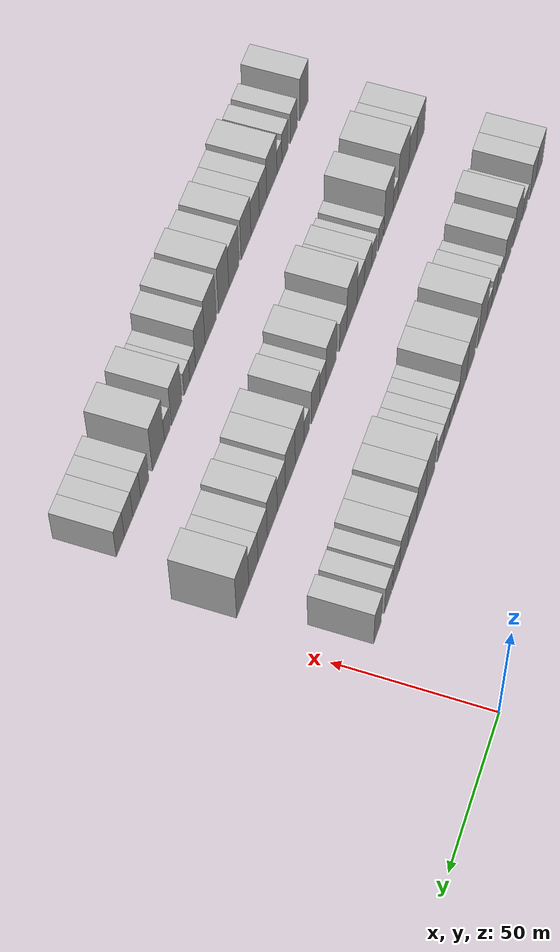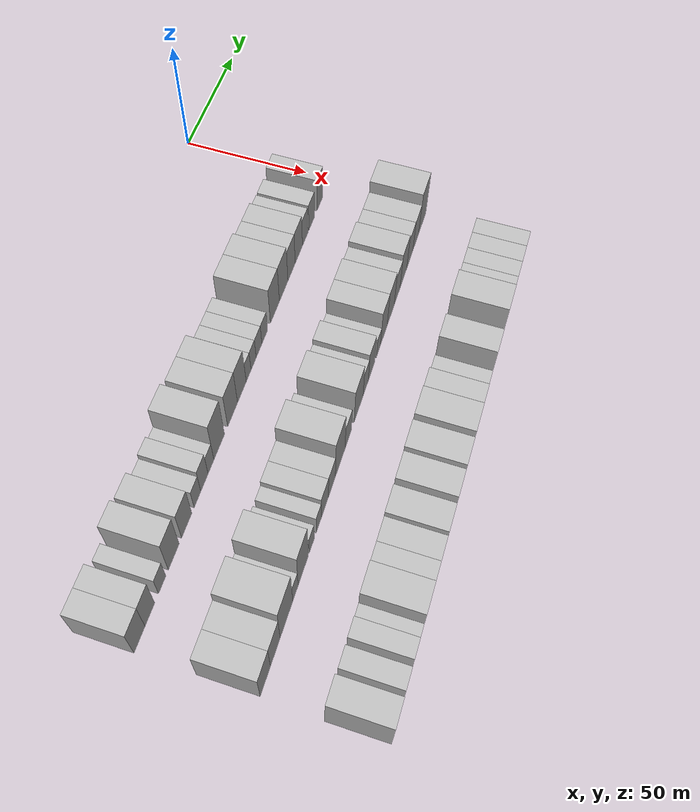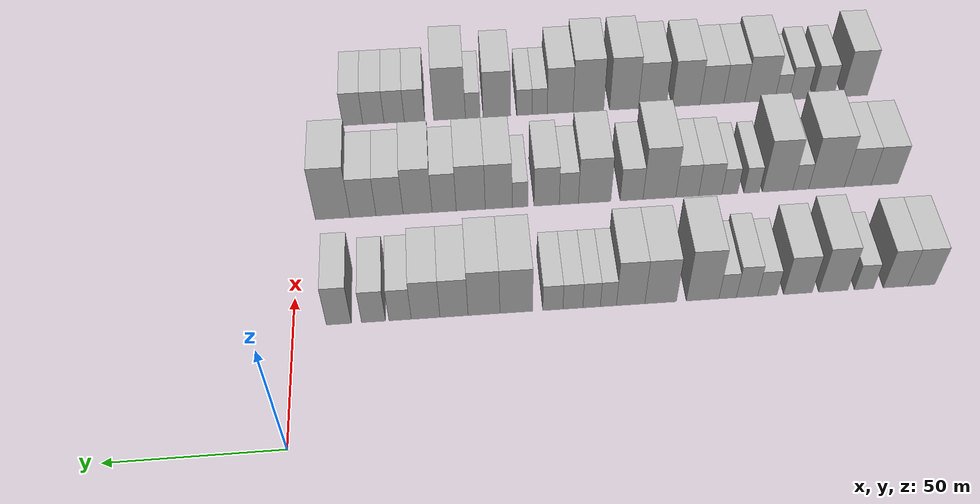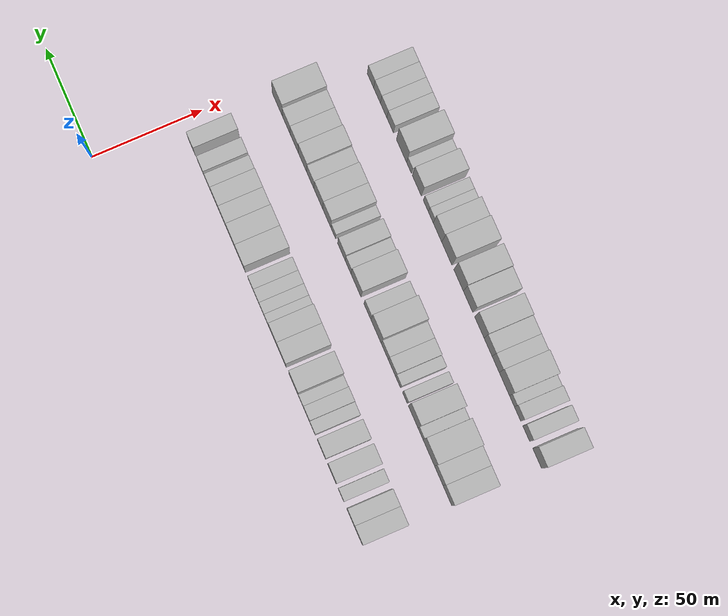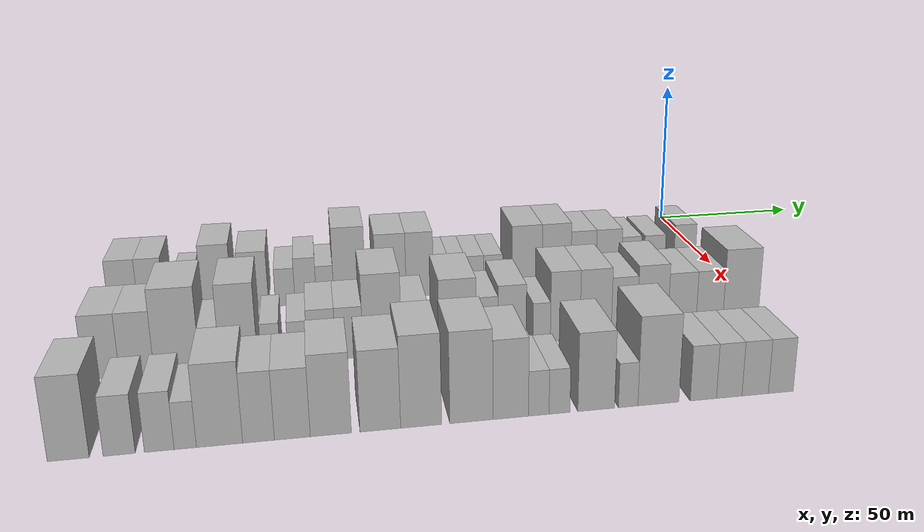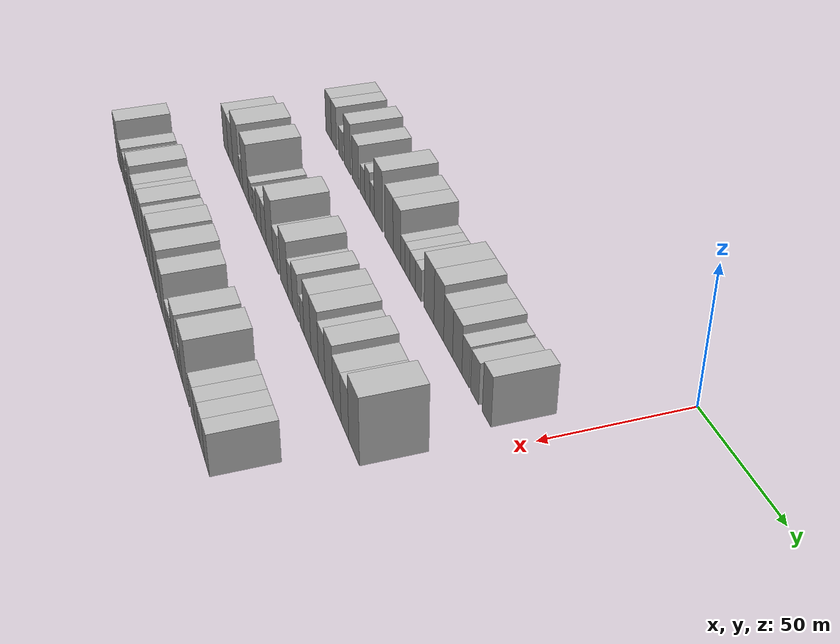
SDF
<sdf version="1.6">
 <world name="default">
  <model name="building_24">
   <static>1</static>
   <pose>50.0000 -187.6576 0 0.000000 0.000000 0.000000</pose>
   <link name="link">
    <pose>0 0 9.00 0 0 0</pose>
    <collision name="collision"><geometry><box><size>20.0000 8.3534 18.0000</size></box></geometry></collision>
    <visual name="visual">
     <cast_shadows>0</cast_shadows>
     <geometry><box><size>20.0000 8.3534 18.0000</size></box></geometry>
     <material>
      <script>
       <uri>model://HANNAS_wall/materials/scripts</uri>
       <uri>model://HANNAS_wall/materials/textures</uri>
       <name>vrc/HANNAS_wall</name>
      </script>
     </material>
    </visual>
   </link>
  </model>
  <model name="building_25">
   <static>1</static>
   <pose>50.0000 -179.7481 0 0.000000 0.000000 0.000000</pose>
   <link name="link">
    <pose>0 0 9.00 0 0 0</pose>
    <collision name="collision"><geometry><box><size>20.0000 7.4656 18.0000</size></box></geometry></collision>
    <visual name="visual">
     <cast_shadows>0</cast_shadows>
     <geometry><box><size>20.0000 7.4656 18.0000</size></box></geometry>
     <material>
      <script>
       <uri>model://HANNAS_wall/materials/scripts</uri>
       <uri>model://HANNAS_wall/materials/textures</uri>
       <name>vrc/HANNAS_wall</name>
      </script>
     </material>
    </visual>
   </link>
  </model>
  <model name="building_26">
   <static>1</static>
   <pose>50.0000 -170.0977 0 0.000000 0.000000 0.000000</pose>
   <link name="link">
    <pose>0 0 6.00 0 0 0</pose>
    <collision name="collision"><geometry><box><size>20.0000 5.8352 12.0000</size></box></geometry></collision>
    <visual name="visual">
     <cast_shadows>0</cast_shadows>
     <geometry><box><size>20.0000 5.8352 12.0000</size></box></geometry>
     <material>
      <script>
       <uri>model://HANNAS_wall/materials/scripts</uri>
       <uri>model://HANNAS_wall/materials/textures</uri>
       <name>vrc/HANNAS_wall</name>
      </script>
     </material>
    </visual>
   </link>
  </model>
  <model name="building_27">
   <static>1</static>
   <pose>50.0000 -160.7447 0 0.000000 0.000000 0.000000</pose>
   <link name="link">
    <pose>0 0 10.50 0 0 0</pose>
    <collision name="collision"><geometry><box><size>20.0000 8.8708 21.0000</size></box></geometry></collision>
    <visual name="visual">
     <cast_shadows>0</cast_shadows>
     <geometry><box><size>20.0000 8.8708 21.0000</size></box></geometry>
     <material>
      <script>
       <uri>model://HANNAS_wall/materials/scripts</uri>
       <uri>model://HANNAS_wall/materials/textures</uri>
       <name>vrc/HANNAS_wall</name>
      </script>
     </material>
    </visual>
   </link>
  </model>
  <model name="building_28">
   <static>1</static>
   <pose>50.0000 -149.9543 0 0.000000 0.000000 0.000000</pose>
   <link name="link">
    <pose>0 0 9.00 0 0 0</pose>
    <collision name="collision"><geometry><box><size>20.0000 8.7100 18.0000</size></box></geometry></collision>
    <visual name="visual">
     <cast_shadows>0</cast_shadows>
     <geometry><box><size>20.0000 8.7100 18.0000</size></box></geometry>
     <material>
      <script>
       <uri>model://HANNAS_wall/materials/scripts</uri>
       <uri>model://HANNAS_wall/materials/textures</uri>
       <name>vrc/HANNAS_wall</name>
      </script>
     </material>
    </visual>
   </link>
  </model>
  <model name="building_29">
   <static>1</static>
   <pose>50.0000 -140.6729 0 0.000000 0.000000 0.000000</pose>
   <link name="link">
    <pose>0 0 6.00 0 0 0</pose>
    <collision name="collision"><geometry><box><size>20.0000 5.8529 12.0000</size></box></geometry></collision>
    <visual name="visual">
     <cast_shadows>0</cast_shadows>
     <geometry><box><size>20.0000 5.8529 12.0000</size></box></geometry>
     <material>
      <script>
       <uri>model://HANNAS_wall/materials/scripts</uri>
       <uri>model://HANNAS_wall/materials/textures</uri>
       <name>vrc/HANNAS_wall</name>
      </script>
     </material>
    </visual>
   </link>
  </model>
  <model name="building_30">
   <static>1</static>
   <pose>50.0000 -134.5189 0 0.000000 0.000000 0.000000</pose>
   <link name="link">
    <pose>0 0 7.50 0 0 0</pose>
    <collision name="collision"><geometry><box><size>20.0000 6.4551 15.0000</size></box></geometry></collision>
    <visual name="visual">
     <cast_shadows>0</cast_shadows>
     <geometry><box><size>20.0000 6.4551 15.0000</size></box></geometry>
     <material>
      <script>
       <uri>model://HANNAS_wall/materials/scripts</uri>
       <uri>model://HANNAS_wall/materials/textures</uri>
       <name>vrc/HANNAS_wall</name>
      </script>
     </material>
    </visual>
   </link>
  </model>
  <model name="building_31">
   <static>1</static>
   <pose>50.0000 -128.6459 0 0.000000 0.000000 0.000000</pose>
   <link name="link">
    <pose>0 0 6.00 0 0 0</pose>
    <collision name="collision"><geometry><box><size>20.0000 5.2908 12.0000</size></box></geometry></collision>
    <visual name="visual">
     <cast_shadows>0</cast_shadows>
     <geometry><box><size>20.0000 5.2908 12.0000</size></box></geometry>
     <material>
      <script>
       <uri>model://HANNAS_wall/materials/scripts</uri>
       <uri>model://HANNAS_wall/materials/textures</uri>
       <name>vrc/HANNAS_wall</name>
      </script>
     </material>
    </visual>
   </link>
  </model>
  <model name="building_32">
   <static>1</static>
   <pose>50.0000 -121.1085 0 0.000000 0.000000 0.000000</pose>
   <link name="link">
    <pose>0 0 12.00 0 0 0</pose>
    <collision name="collision"><geometry><box><size>20.0000 9.7842 24.0000</size></box></geometry></collision>
    <visual name="visual">
     <cast_shadows>0</cast_shadows>
     <geometry><box><size>20.0000 9.7842 24.0000</size></box></geometry>
     <material>
      <script>
       <uri>model://HANNAS_wall/materials/scripts</uri>
       <uri>model://HANNAS_wall/materials/textures</uri>
       <name>vrc/HANNAS_wall</name>
      </script>
     </material>
    </visual>
   </link>
  </model>
  <model name="building_33">
   <static>1</static>
   <pose>50.0000 -108.4735 0 0.000000 0.000000 0.000000</pose>
   <link name="link">
    <pose>0 0 10.50 0 0 0</pose>
    <collision name="collision"><geometry><box><size>20.0000 9.4856 21.0000</size></box></geometry></collision>
    <visual name="visual">
     <cast_shadows>0</cast_shadows>
     <geometry><box><size>20.0000 9.4856 21.0000</size></box></geometry>
     <material>
      <script>
       <uri>model://HANNAS_wall/materials/scripts</uri>
       <uri>model://HANNAS_wall/materials/textures</uri>
       <name>vrc/HANNAS_wall</name>
      </script>
     </material>
    </visual>
   </link>
  </model>
  <model name="building_34">
   <static>1</static>
   <pose>50.0000 -99.4671 0 0.000000 0.000000 0.000000</pose>
   <link name="link">
    <pose>0 0 10.50 0 0 0</pose>
    <collision name="collision"><geometry><box><size>20.0000 8.5273 21.0000</size></box></geometry></collision>
    <visual name="visual">
     <cast_shadows>0</cast_shadows>
     <geometry><box><size>20.0000 8.5273 21.0000</size></box></geometry>
     <material>
      <script>
       <uri>model://HANNAS_wall/materials/scripts</uri>
       <uri>model://HANNAS_wall/materials/textures</uri>
       <name>vrc/HANNAS_wall</name>
      </script>
     </material>
    </visual>
   </link>
  </model>
  <model name="building_35">
   <static>1</static>
   <pose>50.0000 -92.8020 0 0.000000 0.000000 0.000000</pose>
   <link name="link">
    <pose>0 0 6.00 0 0 0</pose>
    <collision name="collision"><geometry><box><size>20.0000 4.8028 12.0000</size></box></geometry></collision>
    <visual name="visual">
     <cast_shadows>0</cast_shadows>
     <geometry><box><size>20.0000 4.8028 12.0000</size></box></geometry>
     <material>
      <script>
       <uri>model://HANNAS_wall/materials/scripts</uri>
       <uri>model://HANNAS_wall/materials/textures</uri>
       <name>vrc/HANNAS_wall</name>
      </script>
     </material>
    </visual>
   </link>
  </model>
  <model name="building_36">
   <static>1</static>
   <pose>50.0000 -87.7829 0 0.000000 0.000000 0.000000</pose>
   <link name="link">
    <pose>0 0 6.00 0 0 0</pose>
    <collision name="collision"><geometry><box><size>20.0000 5.2355 12.0000</size></box></geometry></collision>
    <visual name="visual">
     <cast_shadows>0</cast_shadows>
     <geometry><box><size>20.0000 5.2355 12.0000</size></box></geometry>
     <material>
      <script>
       <uri>model://HANNAS_wall/materials/scripts</uri>
       <uri>model://HANNAS_wall/materials/textures</uri>
       <name>vrc/HANNAS_wall</name>
      </script>
     </material>
    </visual>
   </link>
  </model>
  <model name="building_37">
   <static>1</static>
   <pose>50.0000 -82.2030 0 0.000000 0.000000 0.000000</pose>
   <link name="link">
    <pose>0 0 6.00 0 0 0</pose>
    <collision name="collision"><geometry><box><size>20.0000 5.9243 12.0000</size></box></geometry></collision>
    <visual name="visual">
     <cast_shadows>0</cast_shadows>
     <geometry><box><size>20.0000 5.9243 12.0000</size></box></geometry>
     <material>
      <script>
       <uri>model://HANNAS_wall/materials/scripts</uri>
       <uri>model://HANNAS_wall/materials/textures</uri>
       <name>vrc/HANNAS_wall</name>
      </script>
     </material>
    </visual>
   </link>
  </model>
  <model name="building_38">
   <static>1</static>
   <pose>50.0000 -76.2471 0 0.000000 0.000000 0.000000</pose>
   <link name="link">
    <pose>0 0 6.00 0 0 0</pose>
    <collision name="collision"><geometry><box><size>20.0000 5.9875 12.0000</size></box></geometry></collision>
    <visual name="visual">
     <cast_shadows>0</cast_shadows>
     <geometry><box><size>20.0000 5.9875 12.0000</size></box></geometry>
     <material>
      <script>
       <uri>model://HANNAS_wall/materials/scripts</uri>
       <uri>model://HANNAS_wall/materials/textures</uri>
       <name>vrc/HANNAS_wall</name>
      </script>
     </material>
    </visual>
   </link>
  </model>
  <model name="building_39">
   <static>1</static>
   <pose>50.0000 -65.3838 0 0.000000 0.000000 0.000000</pose>
   <link name="link">
    <pose>0 0 10.50 0 0 0</pose>
    <collision name="collision"><geometry><box><size>20.0000 9.7389 21.0000</size></box></geometry></collision>
    <visual name="visual">
     <cast_shadows>0</cast_shadows>
     <geometry><box><size>20.0000 9.7389 21.0000</size></box></geometry>
     <material>
      <script>
       <uri>model://HANNAS_wall/materials/scripts</uri>
       <uri>model://HANNAS_wall/materials/textures</uri>
       <name>vrc/HANNAS_wall</name>
      </script>
     </material>
    </visual>
   </link>
  </model>
  <model name="building_40">
   <static>1</static>
   <pose>50.0000 -55.8111 0 0.000000 0.000000 0.000000</pose>
   <link name="link">
    <pose>0 0 10.50 0 0 0</pose>
    <collision name="collision"><geometry><box><size>20.0000 9.4066 21.0000</size></box></geometry></collision>
    <visual name="visual">
     <cast_shadows>0</cast_shadows>
     <geometry><box><size>20.0000 9.4066 21.0000</size></box></geometry>
     <material>
      <script>
       <uri>model://HANNAS_wall/materials/scripts</uri>
       <uri>model://HANNAS_wall/materials/textures</uri>
       <name>vrc/HANNAS_wall</name>
      </script>
     </material>
    </visual>
   </link>
  </model>
  <model name="building_41">
   <static>1</static>
   <pose>50.0000 -46.9540 0 0.000000 0.000000 0.000000</pose>
   <link name="link">
    <pose>0 0 9.00 0 0 0</pose>
    <collision name="collision"><geometry><box><size>20.0000 8.3075 18.0000</size></box></geometry></collision>
    <visual name="visual">
     <cast_shadows>0</cast_shadows>
     <geometry><box><size>20.0000 8.3075 18.0000</size></box></geometry>
     <material>
      <script>
       <uri>model://HANNAS_wall/materials/scripts</uri>
       <uri>model://HANNAS_wall/materials/textures</uri>
       <name>vrc/HANNAS_wall</name>
      </script>
     </material>
    </visual>
   </link>
  </model>
  <model name="building_42">
   <static>1</static>
   <pose>50.0000 -38.5774 0 0.000000 0.000000 0.000000</pose>
   <link name="link">
    <pose>0 0 9.00 0 0 0</pose>
    <collision name="collision"><geometry><box><size>20.0000 8.4458 18.0000</size></box></geometry></collision>
    <visual name="visual">
     <cast_shadows>0</cast_shadows>
     <geometry><box><size>20.0000 8.4458 18.0000</size></box></geometry>
     <material>
      <script>
       <uri>model://HANNAS_wall/materials/scripts</uri>
       <uri>model://HANNAS_wall/materials/textures</uri>
       <name>vrc/HANNAS_wall</name>
      </script>
     </material>
    </visual>
   </link>
  </model>
  <model name="building_43">
   <static>1</static>
   <pose>50.0000 -31.0797 0 0.000000 0.000000 0.000000</pose>
   <link name="link">
    <pose>0 0 7.50 0 0 0</pose>
    <collision name="collision"><geometry><box><size>20.0000 6.5497 15.0000</size></box></geometry></collision>
    <visual name="visual">
     <cast_shadows>0</cast_shadows>
     <geometry><box><size>20.0000 6.5497 15.0000</size></box></geometry>
     <material>
      <script>
       <uri>model://HANNAS_wall/materials/scripts</uri>
       <uri>model://HANNAS_wall/materials/textures</uri>
       <name>vrc/HANNAS_wall</name>
      </script>
     </material>
    </visual>
   </link>
  </model>
  <model name="building_44">
   <static>1</static>
   <pose>50.0000 -23.2890 0 0.000000 0.000000 0.000000</pose>
   <link name="link">
    <pose>0 0 7.50 0 0 0</pose>
    <collision name="collision"><geometry><box><size>20.0000 7.0316 15.0000</size></box></geometry></collision>
    <visual name="visual">
     <cast_shadows>0</cast_shadows>
     <geometry><box><size>20.0000 7.0316 15.0000</size></box></geometry>
     <material>
      <script>
       <uri>model://HANNAS_wall/materials/scripts</uri>
       <uri>model://HANNAS_wall/materials/textures</uri>
       <name>vrc/HANNAS_wall</name>
      </script>
     </material>
    </visual>
   </link>
  </model>
  <model name="building_45">
   <static>1</static>
   <pose>50.0000 -13.1310 0 0.000000 0.000000 0.000000</pose>
   <link name="link">
    <pose>0 0 9.00 0 0 0</pose>
    <collision name="collision"><geometry><box><size>20.0000 7.2844 18.0000</size></box></geometry></collision>
    <visual name="visual">
     <cast_shadows>0</cast_shadows>
     <geometry><box><size>20.0000 7.2844 18.0000</size></box></geometry>
     <material>
      <script>
       <uri>model://HANNAS_wall/materials/scripts</uri>
       <uri>model://HANNAS_wall/materials/textures</uri>
       <name>vrc/HANNAS_wall</name>
      </script>
     </material>
    </visual>
   </link>
  </model>
  <model name="building_110">
   <static>1</static>
   <pose>90.0000 -187.4447 0 0.000000 0.000000 0.000000</pose>
   <link name="link">
    <pose>0 0 9.00 0 0 0</pose>
    <collision name="collision"><geometry><box><size>20.0000 8.9232 18.0000</size></box></geometry></collision>
    <visual name="visual">
     <cast_shadows>0</cast_shadows>
     <geometry><box><size>20.0000 8.9232 18.0000</size></box></geometry>
     <material>
      <script>
       <uri>model://HANNAS_wall/materials/scripts</uri>
       <uri>model://HANNAS_wall/materials/textures</uri>
       <name>vrc/HANNAS_wall</name>
      </script>
     </material>
    </visual>
   </link>
  </model>
  <model name="building_111">
   <static>1</static>
   <pose>90.0000 -178.6407 0 0.000000 0.000000 0.000000</pose>
   <link name="link">
    <pose>0 0 9.00 0 0 0</pose>
    <collision name="collision"><geometry><box><size>20.0000 8.6849 18.0000</size></box></geometry></collision>
    <visual name="visual">
     <cast_shadows>0</cast_shadows>
     <geometry><box><size>20.0000 8.6849 18.0000</size></box></geometry>
     <material>
      <script>
       <uri>model://HANNAS_wall/materials/scripts</uri>
       <uri>model://HANNAS_wall/materials/textures</uri>
       <name>vrc/HANNAS_wall</name>
      </script>
     </material>
    </visual>
   </link>
  </model>
  <model name="building_112">
   <static>1</static>
   <pose>90.0000 -168.4499 0 0.000000 0.000000 0.000000</pose>
   <link name="link">
    <pose>0 0 12.00 0 0 0</pose>
    <collision name="collision"><geometry><box><size>20.0000 11.6965 24.0000</size></box></geometry></collision>
    <visual name="visual">
     <cast_shadows>0</cast_shadows>
     <geometry><box><size>20.0000 11.6965 24.0000</size></box></geometry>
     <material>
      <script>
       <uri>model://HANNAS_wall/materials/scripts</uri>
       <uri>model://HANNAS_wall/materials/textures</uri>
       <name>vrc/HANNAS_wall</name>
      </script>
     </material>
    </visual>
   </link>
  </model>
  <model name="building_113">
   <static>1</static>
   <pose>90.0000 -160.0272 0 0.000000 0.000000 0.000000</pose>
   <link name="link">
    <pose>0 0 6.00 0 0 0</pose>
    <collision name="collision"><geometry><box><size>20.0000 5.1489 12.0000</size></box></geometry></collision>
    <visual name="visual">
     <cast_shadows>0</cast_shadows>
     <geometry><box><size>20.0000 5.1489 12.0000</size></box></geometry>
     <material>
      <script>
       <uri>model://HANNAS_wall/materials/scripts</uri>
       <uri>model://HANNAS_wall/materials/textures</uri>
       <name>vrc/HANNAS_wall</name>
      </script>
     </material>
    </visual>
   </link>
  </model>
  <model name="building_114">
   <static>1</static>
   <pose>90.0000 -152.5129 0 0.000000 0.000000 0.000000</pose>
   <link name="link">
    <pose>0 0 12.00 0 0 0</pose>
    <collision name="collision"><geometry><box><size>20.0000 9.8797 24.0000</size></box></geometry></collision>
    <visual name="visual">
     <cast_shadows>0</cast_shadows>
     <geometry><box><size>20.0000 9.8797 24.0000</size></box></geometry>
     <material>
      <script>
       <uri>model://HANNAS_wall/materials/scripts</uri>
       <uri>model://HANNAS_wall/materials/textures</uri>
       <name>vrc/HANNAS_wall</name>
      </script>
     </material>
    </visual>
   </link>
  </model>
  <model name="building_115">
   <static>1</static>
   <pose>90.0000 -144.0586 0 0.000000 0.000000 0.000000</pose>
   <link name="link">
    <pose>0 0 6.00 0 0 0</pose>
    <collision name="collision"><geometry><box><size>20.0000 5.0291 12.0000</size></box></geometry></collision>
    <visual name="visual">
     <cast_shadows>0</cast_shadows>
     <geometry><box><size>20.0000 5.0291 12.0000</size></box></geometry>
     <material>
      <script>
       <uri>model://HANNAS_wall/materials/scripts</uri>
       <uri>model://HANNAS_wall/materials/textures</uri>
       <name>vrc/HANNAS_wall</name>
      </script>
     </material>
    </visual>
   </link>
  </model>
  <model name="building_116">
   <static>1</static>
   <pose>90.0000 -136.9716 0 0.000000 0.000000 0.000000</pose>
   <link name="link">
    <pose>0 0 6.00 0 0 0</pose>
    <collision name="collision"><geometry><box><size>20.0000 5.1449 12.0000</size></box></geometry></collision>
    <visual name="visual">
     <cast_shadows>0</cast_shadows>
     <geometry><box><size>20.0000 5.1449 12.0000</size></box></geometry>
     <material>
      <script>
       <uri>model://HANNAS_wall/materials/scripts</uri>
       <uri>model://HANNAS_wall/materials/textures</uri>
       <name>vrc/HANNAS_wall</name>
      </script>
     </material>
    </visual>
   </link>
  </model>
  <model name="building_117">
   <static>1</static>
   <pose>90.0000 -130.6499 0 0.000000 0.000000 0.000000</pose>
   <link name="link">
    <pose>0 0 7.50 0 0 0</pose>
    <collision name="collision"><geometry><box><size>20.0000 7.4985 15.0000</size></box></geometry></collision>
    <visual name="visual">
     <cast_shadows>0</cast_shadows>
     <geometry><box><size>20.0000 7.4985 15.0000</size></box></geometry>
     <material>
      <script>
       <uri>model://HANNAS_wall/materials/scripts</uri>
       <uri>model://HANNAS_wall/materials/textures</uri>
       <name>vrc/HANNAS_wall</name>
      </script>
     </material>
    </visual>
   </link>
  </model>
  <model name="building_118">
   <static>1</static>
   <pose>90.0000 -123.2020 0 0.000000 0.000000 0.000000</pose>
   <link name="link">
    <pose>0 0 7.50 0 0 0</pose>
    <collision name="collision"><geometry><box><size>20.0000 7.3974 15.0000</size></box></geometry></collision>
    <visual name="visual">
     <cast_shadows>0</cast_shadows>
     <geometry><box><size>20.0000 7.3974 15.0000</size></box></geometry>
     <material>
      <script>
       <uri>model://HANNAS_wall/materials/scripts</uri>
       <uri>model://HANNAS_wall/materials/textures</uri>
       <name>vrc/HANNAS_wall</name>
      </script>
     </material>
    </visual>
   </link>
  </model>
  <model name="building_119">
   <static>1</static>
   <pose>90.0000 -114.2329 0 0.000000 0.000000 0.000000</pose>
   <link name="link">
    <pose>0 0 12.00 0 0 0</pose>
    <collision name="collision"><geometry><box><size>20.0000 10.5407 24.0000</size></box></geometry></collision>
    <visual name="visual">
     <cast_shadows>0</cast_shadows>
     <geometry><box><size>20.0000 10.5407 24.0000</size></box></geometry>
     <material>
      <script>
       <uri>model://HANNAS_wall/materials/scripts</uri>
       <uri>model://HANNAS_wall/materials/textures</uri>
       <name>vrc/HANNAS_wall</name>
      </script>
     </material>
    </visual>
   </link>
  </model>
  <model name="building_120">
   <static>1</static>
   <pose>90.0000 -105.2889 0 0.000000 0.000000 0.000000</pose>
   <link name="link">
    <pose>0 0 7.50 0 0 0</pose>
    <collision name="collision"><geometry><box><size>20.0000 7.3475 15.0000</size></box></geometry></collision>
    <visual name="visual">
     <cast_shadows>0</cast_shadows>
     <geometry><box><size>20.0000 7.3475 15.0000</size></box></geometry>
     <material>
      <script>
       <uri>model://HANNAS_wall/materials/scripts</uri>
       <uri>model://HANNAS_wall/materials/textures</uri>
       <name>vrc/HANNAS_wall</name>
      </script>
     </material>
    </visual>
   </link>
  </model>
  <model name="building_121">
   <static>1</static>
   <pose>90.0000 -93.4156 0 0.000000 0.000000 0.000000</pose>
   <link name="link">
    <pose>0 0 10.50 0 0 0</pose>
    <collision name="collision"><geometry><box><size>20.0000 10.3990 21.0000</size></box></geometry></collision>
    <visual name="visual">
     <cast_shadows>0</cast_shadows>
     <geometry><box><size>20.0000 10.3990 21.0000</size></box></geometry>
     <material>
      <script>
       <uri>model://HANNAS_wall/materials/scripts</uri>
       <uri>model://HANNAS_wall/materials/textures</uri>
       <name>vrc/HANNAS_wall</name>
      </script>
     </material>
    </visual>
   </link>
  </model>
  <model name="building_122">
   <static>1</static>
   <pose>90.0000 -85.1647 0 0.000000 0.000000 0.000000</pose>
   <link name="link">
    <pose>0 0 7.50 0 0 0</pose>
    <collision name="collision"><geometry><box><size>20.0000 6.1029 15.0000</size></box></geometry></collision>
    <visual name="visual">
     <cast_shadows>0</cast_shadows>
     <geometry><box><size>20.0000 6.1029 15.0000</size></box></geometry>
     <material>
      <script>
       <uri>model://HANNAS_wall/materials/scripts</uri>
       <uri>model://HANNAS_wall/materials/textures</uri>
       <name>vrc/HANNAS_wall</name>
      </script>
     </material>
    </visual>
   </link>
  </model>
  <model name="building_123">
   <static>1</static>
   <pose>90.0000 -78.1053 0 0.000000 0.000000 0.000000</pose>
   <link name="link">
    <pose>0 0 9.00 0 0 0</pose>
    <collision name="collision"><geometry><box><size>20.0000 8.0158 18.0000</size></box></geometry></collision>
    <visual name="visual">
     <cast_shadows>0</cast_shadows>
     <geometry><box><size>20.0000 8.0158 18.0000</size></box></geometry>
     <material>
      <script>
       <uri>model://HANNAS_wall/materials/scripts</uri>
       <uri>model://HANNAS_wall/materials/textures</uri>
       <name>vrc/HANNAS_wall</name>
      </script>
     </material>
    </visual>
   </link>
  </model>
  <model name="building_124">
   <static>1</static>
   <pose>90.0000 -69.6190 0 0.000000 0.000000 0.000000</pose>
   <link name="link">
    <pose>0 0 6.00 0 0 0</pose>
    <collision name="collision"><geometry><box><size>20.0000 4.9568 12.0000</size></box></geometry></collision>
    <visual name="visual">
     <cast_shadows>0</cast_shadows>
     <geometry><box><size>20.0000 4.9568 12.0000</size></box></geometry>
     <material>
      <script>
       <uri>model://HANNAS_wall/materials/scripts</uri>
       <uri>model://HANNAS_wall/materials/textures</uri>
       <name>vrc/HANNAS_wall</name>
      </script>
     </material>
    </visual>
   </link>
  </model>
  <model name="building_125">
   <static>1</static>
   <pose>90.0000 -62.8625 0 0.000000 0.000000 0.000000</pose>
   <link name="link">
    <pose>0 0 10.50 0 0 0</pose>
    <collision name="collision"><geometry><box><size>20.0000 8.5563 21.0000</size></box></geometry></collision>
    <visual name="visual">
     <cast_shadows>0</cast_shadows>
     <geometry><box><size>20.0000 8.5563 21.0000</size></box></geometry>
     <material>
      <script>
       <uri>model://HANNAS_wall/materials/scripts</uri>
       <uri>model://HANNAS_wall/materials/textures</uri>
       <name>vrc/HANNAS_wall</name>
      </script>
     </material>
    </visual>
   </link>
  </model>
  <model name="building_126">
   <static>1</static>
   <pose>90.0000 -53.9871 0 0.000000 0.000000 0.000000</pose>
   <link name="link">
    <pose>0 0 10.50 0 0 0</pose>
    <collision name="collision"><geometry><box><size>20.0000 9.1945 21.0000</size></box></geometry></collision>
    <visual name="visual">
     <cast_shadows>0</cast_shadows>
     <geometry><box><size>20.0000 9.1945 21.0000</size></box></geometry>
     <material>
      <script>
       <uri>model://HANNAS_wall/materials/scripts</uri>
       <uri>model://HANNAS_wall/materials/textures</uri>
       <name>vrc/HANNAS_wall</name>
      </script>
     </material>
    </visual>
   </link>
  </model>
  <model name="building_127">
   <static>1</static>
   <pose>90.0000 -45.5771 0 0.000000 0.000000 0.000000</pose>
   <link name="link">
    <pose>0 0 9.00 0 0 0</pose>
    <collision name="collision"><geometry><box><size>20.0000 7.6255 18.0000</size></box></geometry></collision>
    <visual name="visual">
     <cast_shadows>0</cast_shadows>
     <geometry><box><size>20.0000 7.6255 18.0000</size></box></geometry>
     <material>
      <script>
       <uri>model://HANNAS_wall/materials/scripts</uri>
       <uri>model://HANNAS_wall/materials/textures</uri>
       <name>vrc/HANNAS_wall</name>
      </script>
     </material>
    </visual>
   </link>
  </model>
  <model name="building_128">
   <static>1</static>
   <pose>90.0000 -37.1855 0 0.000000 0.000000 0.000000</pose>
   <link name="link">
    <pose>0 0 10.50 0 0 0</pose>
    <collision name="collision"><geometry><box><size>20.0000 9.1577 21.0000</size></box></geometry></collision>
    <visual name="visual">
     <cast_shadows>0</cast_shadows>
     <geometry><box><size>20.0000 9.1577 21.0000</size></box></geometry>
     <material>
      <script>
       <uri>model://HANNAS_wall/materials/scripts</uri>
       <uri>model://HANNAS_wall/materials/textures</uri>
       <name>vrc/HANNAS_wall</name>
      </script>
     </material>
    </visual>
   </link>
  </model>
  <model name="building_129">
   <static>1</static>
   <pose>90.0000 -28.3389 0 0.000000 0.000000 0.000000</pose>
   <link name="link">
    <pose>0 0 9.00 0 0 0</pose>
    <collision name="collision"><geometry><box><size>20.0000 8.5354 18.0000</size></box></geometry></collision>
    <visual name="visual">
     <cast_shadows>0</cast_shadows>
     <geometry><box><size>20.0000 8.5354 18.0000</size></box></geometry>
     <material>
      <script>
       <uri>model://HANNAS_wall/materials/scripts</uri>
       <uri>model://HANNAS_wall/materials/textures</uri>
       <name>vrc/HANNAS_wall</name>
      </script>
     </material>
    </visual>
   </link>
  </model>
  <model name="building_130">
   <static>1</static>
   <pose>90.0000 -19.9987 0 0.000000 0.000000 0.000000</pose>
   <link name="link">
    <pose>0 0 9.00 0 0 0</pose>
    <collision name="collision"><geometry><box><size>20.0000 8.1452 18.0000</size></box></geometry></collision>
    <visual name="visual">
     <cast_shadows>0</cast_shadows>
     <geometry><box><size>20.0000 8.1452 18.0000</size></box></geometry>
     <material>
      <script>
       <uri>model://HANNAS_wall/materials/scripts</uri>
       <uri>model://HANNAS_wall/materials/textures</uri>
       <name>vrc/HANNAS_wall</name>
      </script>
     </material>
    </visual>
   </link>
  </model>
  <model name="building_131">
   <static>1</static>
   <pose>90.0000 -10.4843 0 0.000000 0.000000 0.000000</pose>
   <link name="link">
    <pose>0 0 12.00 0 0 0</pose>
    <collision name="collision"><geometry><box><size>20.0000 10.8834 24.0000</size></box></geometry></collision>
    <visual name="visual">
     <cast_shadows>0</cast_shadows>
     <geometry><box><size>20.0000 10.8834 24.0000</size></box></geometry>
     <material>
      <script>
       <uri>model://HANNAS_wall/materials/scripts</uri>
       <uri>model://HANNAS_wall/materials/textures</uri>
       <name>vrc/HANNAS_wall</name>
      </script>
     </material>
    </visual>
   </link>
  </model>
  <model name="building_197">
   <static>1</static>
   <pose>130.0000 -188.1423 0 0.000000 0.000000 0.000000</pose>
   <link name="link">
    <pose>0 0 10.50 0 0 0</pose>
    <collision name="collision"><geometry><box><size>20.0000 8.9752 21.0000</size></box></geometry></collision>
    <visual name="visual">
     <cast_shadows>0</cast_shadows>
     <geometry><box><size>20.0000 8.9752 21.0000</size></box></geometry>
     <material>
      <script>
       <uri>model://HANNAS_wall/materials/scripts</uri>
       <uri>model://HANNAS_wall/materials/textures</uri>
       <name>vrc/HANNAS_wall</name>
      </script>
     </material>
    </visual>
   </link>
  </model>
  <model name="building_198">
   <static>1</static>
   <pose>130.0000 -177.1646 0 0.000000 0.000000 0.000000</pose>
   <link name="link">
    <pose>0 0 7.50 0 0 0</pose>
    <collision name="collision"><geometry><box><size>20.0000 6.9802 15.0000</size></box></geometry></collision>
    <visual name="visual">
     <cast_shadows>0</cast_shadows>
     <geometry><box><size>20.0000 6.9802 15.0000</size></box></geometry>
     <material>
      <script>
       <uri>model://HANNAS_wall/materials/scripts</uri>
       <uri>model://HANNAS_wall/materials/textures</uri>
       <name>vrc/HANNAS_wall</name>
      </script>
     </material>
    </visual>
   </link>
  </model>
  <model name="building_199">
   <static>1</static>
   <pose>130.0000 -168.4057 0 0.000000 0.000000 0.000000</pose>
   <link name="link">
    <pose>0 0 7.50 0 0 0</pose>
    <collision name="collision"><geometry><box><size>20.0000 6.5376 15.0000</size></box></geometry></collision>
    <visual name="visual">
     <cast_shadows>0</cast_shadows>
     <geometry><box><size>20.0000 6.5376 15.0000</size></box></geometry>
     <material>
      <script>
       <uri>model://HANNAS_wall/materials/scripts</uri>
       <uri>model://HANNAS_wall/materials/textures</uri>
       <name>vrc/HANNAS_wall</name>
      </script>
     </material>
    </visual>
   </link>
  </model>
  <model name="building_200">
   <static>1</static>
   <pose>130.0000 -162.6642 0 0.000000 0.000000 0.000000</pose>
   <link name="link">
    <pose>0 0 6.00 0 0 0</pose>
    <collision name="collision"><geometry><box><size>20.0000 4.9455 12.0000</size></box></geometry></collision>
    <visual name="visual">
     <cast_shadows>0</cast_shadows>
     <geometry><box><size>20.0000 4.9455 12.0000</size></box></geometry>
     <material>
      <script>
       <uri>model://HANNAS_wall/materials/scripts</uri>
       <uri>model://HANNAS_wall/materials/textures</uri>
       <name>vrc/HANNAS_wall</name>
      </script>
     </material>
    </visual>
   </link>
  </model>
  <model name="building_201">
   <static>1</static>
   <pose>130.0000 -154.9932 0 0.000000 0.000000 0.000000</pose>
   <link name="link">
    <pose>0 0 10.50 0 0 0</pose>
    <collision name="collision"><geometry><box><size>20.0000 10.3965 21.0000</size></box></geometry></collision>
    <visual name="visual">
     <cast_shadows>0</cast_shadows>
     <geometry><box><size>20.0000 10.3965 21.0000</size></box></geometry>
     <material>
      <script>
       <uri>model://HANNAS_wall/materials/scripts</uri>
       <uri>model://HANNAS_wall/materials/textures</uri>
       <name>vrc/HANNAS_wall</name>
      </script>
     </material>
    </visual>
   </link>
  </model>
  <model name="building_202">
   <static>1</static>
   <pose>130.0000 -146.1828 0 0.000000 0.000000 0.000000</pose>
   <link name="link">
    <pose>0 0 9.00 0 0 0</pose>
    <collision name="collision"><geometry><box><size>20.0000 7.2243 18.0000</size></box></geometry></collision>
    <visual name="visual">
     <cast_shadows>0</cast_shadows>
     <geometry><box><size>20.0000 7.2243 18.0000</size></box></geometry>
     <material>
      <script>
       <uri>model://HANNAS_wall/materials/scripts</uri>
       <uri>model://HANNAS_wall/materials/textures</uri>
       <name>vrc/HANNAS_wall</name>
      </script>
     </material>
    </visual>
   </link>
  </model>
  <model name="building_203">
   <static>1</static>
   <pose>130.0000 -138.4527 0 0.000000 0.000000 0.000000</pose>
   <link name="link">
    <pose>0 0 9.00 0 0 0</pose>
    <collision name="collision"><geometry><box><size>20.0000 8.2360 18.0000</size></box></geometry></collision>
    <visual name="visual">
     <cast_shadows>0</cast_shadows>
     <geometry><box><size>20.0000 8.2360 18.0000</size></box></geometry>
     <material>
      <script>
       <uri>model://HANNAS_wall/materials/scripts</uri>
       <uri>model://HANNAS_wall/materials/textures</uri>
       <name>vrc/HANNAS_wall</name>
      </script>
     </material>
    </visual>
   </link>
  </model>
  <model name="building_204">
   <static>1</static>
   <pose>130.0000 -129.5408 0 0.000000 0.000000 0.000000</pose>
   <link name="link">
    <pose>0 0 10.50 0 0 0</pose>
    <collision name="collision"><geometry><box><size>20.0000 9.5878 21.0000</size></box></geometry></collision>
    <visual name="visual">
     <cast_shadows>0</cast_shadows>
     <geometry><box><size>20.0000 9.5878 21.0000</size></box></geometry>
     <material>
      <script>
       <uri>model://HANNAS_wall/materials/scripts</uri>
       <uri>model://HANNAS_wall/materials/textures</uri>
       <name>vrc/HANNAS_wall</name>
      </script>
     </material>
    </visual>
   </link>
  </model>
  <model name="building_205">
   <static>1</static>
   <pose>130.0000 -117.9343 0 0.000000 0.000000 0.000000</pose>
   <link name="link">
    <pose>0 0 10.50 0 0 0</pose>
    <collision name="collision"><geometry><box><size>20.0000 9.6252 21.0000</size></box></geometry></collision>
    <visual name="visual">
     <cast_shadows>0</cast_shadows>
     <geometry><box><size>20.0000 9.6252 21.0000</size></box></geometry>
     <material>
      <script>
       <uri>model://HANNAS_wall/materials/scripts</uri>
       <uri>model://HANNAS_wall/materials/textures</uri>
       <name>vrc/HANNAS_wall</name>
      </script>
     </material>
    </visual>
   </link>
  </model>
  <model name="building_206">
   <static>1</static>
   <pose>130.0000 -108.1946 0 0.000000 0.000000 0.000000</pose>
   <link name="link">
    <pose>0 0 12.00 0 0 0</pose>
    <collision name="collision"><geometry><box><size>20.0000 9.8543 24.0000</size></box></geometry></collision>
    <visual name="visual">
     <cast_shadows>0</cast_shadows>
     <geometry><box><size>20.0000 9.8543 24.0000</size></box></geometry>
     <material>
      <script>
       <uri>model://HANNAS_wall/materials/scripts</uri>
       <uri>model://HANNAS_wall/materials/textures</uri>
       <name>vrc/HANNAS_wall</name>
      </script>
     </material>
    </visual>
   </link>
  </model>
  <model name="building_207">
   <static>1</static>
   <pose>130.0000 -96.0289 0 0.000000 0.000000 0.000000</pose>
   <link name="link">
    <pose>0 0 12.00 0 0 0</pose>
    <collision name="collision"><geometry><box><size>20.0000 10.4771 24.0000</size></box></geometry></collision>
    <visual name="visual">
     <cast_shadows>0</cast_shadows>
     <geometry><box><size>20.0000 10.4771 24.0000</size></box></geometry>
     <material>
      <script>
       <uri>model://HANNAS_wall/materials/scripts</uri>
       <uri>model://HANNAS_wall/materials/textures</uri>
       <name>vrc/HANNAS_wall</name>
      </script>
     </material>
    </visual>
   </link>
  </model>
  <model name="building_208">
   <static>1</static>
   <pose>130.0000 -86.3805 0 0.000000 0.000000 0.000000</pose>
   <link name="link">
    <pose>0 0 10.50 0 0 0</pose>
    <collision name="collision"><geometry><box><size>20.0000 8.8195 21.0000</size></box></geometry></collision>
    <visual name="visual">
     <cast_shadows>0</cast_shadows>
     <geometry><box><size>20.0000 8.8195 21.0000</size></box></geometry>
     <material>
      <script>
       <uri>model://HANNAS_wall/materials/scripts</uri>
       <uri>model://HANNAS_wall/materials/textures</uri>
       <name>vrc/HANNAS_wall</name>
      </script>
     </material>
    </visual>
   </link>
  </model>
  <model name="building_209">
   <static>1</static>
   <pose>130.0000 -79.4064 0 0.000000 0.000000 0.000000</pose>
   <link name="link">
    <pose>0 0 6.00 0 0 0</pose>
    <collision name="collision"><geometry><box><size>20.0000 5.1288 12.0000</size></box></geometry></collision>
    <visual name="visual">
     <cast_shadows>0</cast_shadows>
     <geometry><box><size>20.0000 5.1288 12.0000</size></box></geometry>
     <material>
      <script>
       <uri>model://HANNAS_wall/materials/scripts</uri>
       <uri>model://HANNAS_wall/materials/textures</uri>
       <name>vrc/HANNAS_wall</name>
      </script>
     </material>
    </visual>
   </link>
  </model>
  <model name="building_210">
   <static>1</static>
   <pose>130.0000 -74.2174 0 0.000000 0.000000 0.000000</pose>
   <link name="link">
    <pose>0 0 6.00 0 0 0</pose>
    <collision name="collision"><geometry><box><size>20.0000 5.2493 12.0000</size></box></geometry></collision>
    <visual name="visual">
     <cast_shadows>0</cast_shadows>
     <geometry><box><size>20.0000 5.2493 12.0000</size></box></geometry>
     <material>
      <script>
       <uri>model://HANNAS_wall/materials/scripts</uri>
       <uri>model://HANNAS_wall/materials/textures</uri>
       <name>vrc/HANNAS_wall</name>
      </script>
     </material>
    </visual>
   </link>
  </model>
  <model name="building_211">
   <static>1</static>
   <pose>130.0000 -64.9161 0 0.000000 0.000000 0.000000</pose>
   <link name="link">
    <pose>0 0 10.50 0 0 0</pose>
    <collision name="collision"><geometry><box><size>20.0000 9.3532 21.0000</size></box></geometry></collision>
    <visual name="visual">
     <cast_shadows>0</cast_shadows>
     <geometry><box><size>20.0000 9.3532 21.0000</size></box></geometry>
     <material>
      <script>
       <uri>model://HANNAS_wall/materials/scripts</uri>
       <uri>model://HANNAS_wall/materials/textures</uri>
       <name>vrc/HANNAS_wall</name>
      </script>
     </material>
    </visual>
   </link>
  </model>
  <model name="building_212">
   <static>1</static>
   <pose>130.0000 -56.7356 0 0.000000 0.000000 0.000000</pose>
   <link name="link">
    <pose>0 0 6.00 0 0 0</pose>
    <collision name="collision"><geometry><box><size>20.0000 5.0079 12.0000</size></box></geometry></collision>
    <visual name="visual">
     <cast_shadows>0</cast_shadows>
     <geometry><box><size>20.0000 5.0079 12.0000</size></box></geometry>
     <material>
      <script>
       <uri>model://HANNAS_wall/materials/scripts</uri>
       <uri>model://HANNAS_wall/materials/textures</uri>
       <name>vrc/HANNAS_wall</name>
      </script>
     </material>
    </visual>
   </link>
  </model>
  <model name="building_213">
   <static>1</static>
   <pose>130.0000 -48.8933 0 0.000000 0.000000 0.000000</pose>
   <link name="link">
    <pose>0 0 12.00 0 0 0</pose>
    <collision name="collision"><geometry><box><size>20.0000 10.6766 24.0000</size></box></geometry></collision>
    <visual name="visual">
     <cast_shadows>0</cast_shadows>
     <geometry><box><size>20.0000 10.6766 24.0000</size></box></geometry>
     <material>
      <script>
       <uri>model://HANNAS_wall/materials/scripts</uri>
       <uri>model://HANNAS_wall/materials/textures</uri>
       <name>vrc/HANNAS_wall</name>
      </script>
     </material>
    </visual>
   </link>
  </model>
  <model name="building_214">
   <static>1</static>
   <pose>130.0000 -37.0915 0 0.000000 0.000000 0.000000</pose>
   <link name="link">
    <pose>0 0 7.50 0 0 0</pose>
    <collision name="collision"><geometry><box><size>20.0000 6.9271 15.0000</size></box></geometry></collision>
    <visual name="visual">
     <cast_shadows>0</cast_shadows>
     <geometry><box><size>20.0000 6.9271 15.0000</size></box></geometry>
     <material>
      <script>
       <uri>model://HANNAS_wall/materials/scripts</uri>
       <uri>model://HANNAS_wall/materials/textures</uri>
       <name>vrc/HANNAS_wall</name>
      </script>
     </material>
    </visual>
   </link>
  </model>
  <model name="building_215">
   <static>1</static>
   <pose>130.0000 -30.2226 0 0.000000 0.000000 0.000000</pose>
   <link name="link">
    <pose>0 0 7.50 0 0 0</pose>
    <collision name="collision"><geometry><box><size>20.0000 6.8108 15.0000</size></box></geometry></collision>
    <visual name="visual">
     <cast_shadows>0</cast_shadows>
     <geometry><box><size>20.0000 6.8108 15.0000</size></box></geometry>
     <material>
      <script>
       <uri>model://HANNAS_wall/materials/scripts</uri>
       <uri>model://HANNAS_wall/materials/textures</uri>
       <name>vrc/HANNAS_wall</name>
      </script>
     </material>
    </visual>
   </link>
  </model>
  <model name="building_216">
   <static>1</static>
   <pose>130.0000 -23.2544 0 0.000000 0.000000 0.000000</pose>
   <link name="link">
    <pose>0 0 7.50 0 0 0</pose>
    <collision name="collision"><geometry><box><size>20.0000 7.1256 15.0000</size></box></geometry></collision>
    <visual name="visual">
     <cast_shadows>0</cast_shadows>
     <geometry><box><size>20.0000 7.1256 15.0000</size></box></geometry>
     <material>
      <script>
       <uri>model://HANNAS_wall/materials/scripts</uri>
       <uri>model://HANNAS_wall/materials/textures</uri>
       <name>vrc/HANNAS_wall</name>
      </script>
     </material>
    </visual>
   </link>
  </model>
  <model name="building_217">
   <static>1</static>
   <pose>130.0000 -16.3145 0 0.000000 0.000000 0.000000</pose>
   <link name="link">
    <pose>0 0 7.50 0 0 0</pose>
    <collision name="collision"><geometry><box><size>20.0000 6.7543 15.0000</size></box></geometry></collision>
    <visual name="visual">
     <cast_shadows>0</cast_shadows>
     <geometry><box><size>20.0000 6.7543 15.0000</size></box></geometry>
     <material>
      <script>
       <uri>model://HANNAS_wall/materials/scripts</uri>
       <uri>model://HANNAS_wall/materials/textures</uri>
       <name>vrc/HANNAS_wall</name>
      </script>
     </material>
    </visual>
   </link>
  </model>
 </world>
</sdf>
